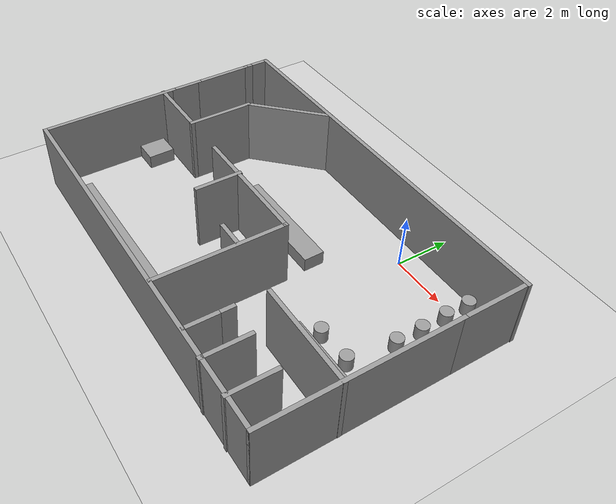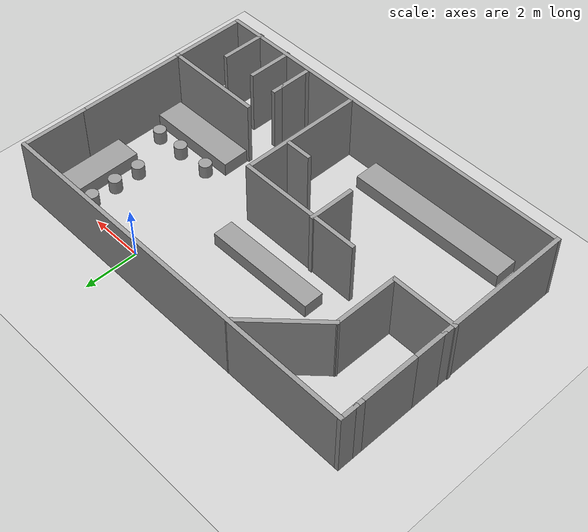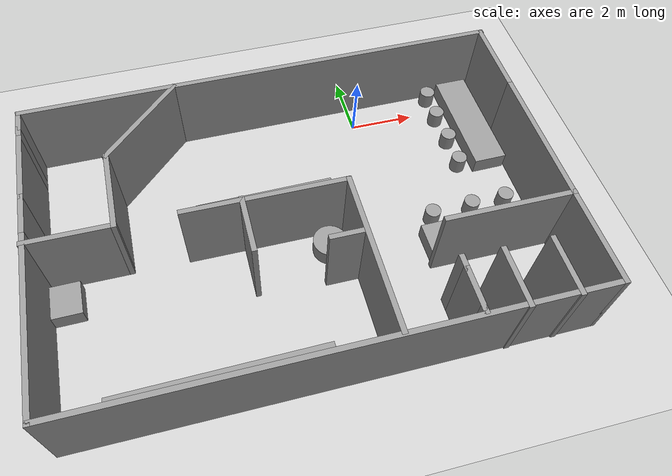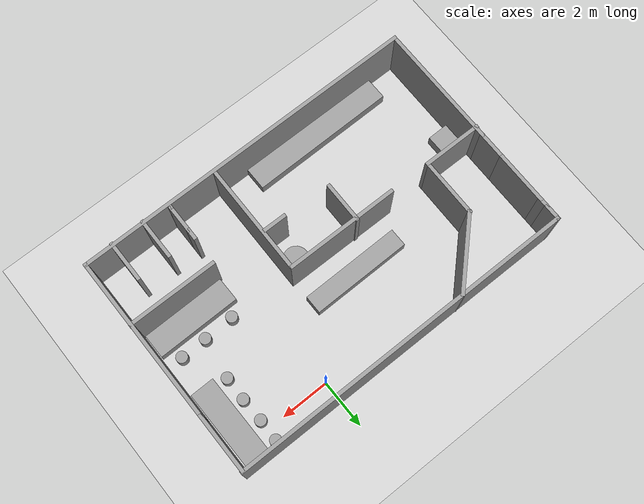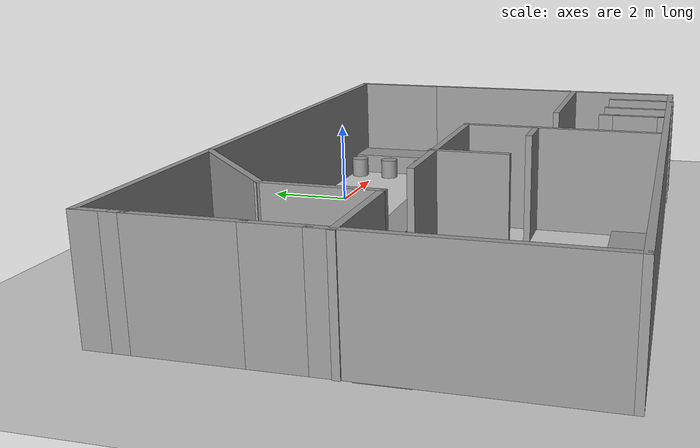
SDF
<sdf version="1.7">
 <world name="default">
  <scene><ambient>0.4 0.4 0.4 1</ambient><background>0.7 0.7 0.7 1</background><shadows>1</shadows></scene>
  <light name="sun" type="directional">
   <pose>0 0 10 0 -0 0</pose>
   <diffuse>0.8 0.8 0.8 1</diffuse>
   <specular>0.2 0.2 0.2 1</specular>
   <attenuation>
    <range>1000</range>
    <constant>0.9</constant>
    <linear>0.01</linear>
    <quadratic>0.001</quadratic>
   </attenuation>
   <direction>-0.5 0.1 -0.9</direction>
   <spot><inner_angle>0</inner_angle><outer_angle>0</outer_angle><falloff>0</falloff></spot>
  </light>
  <model name="ground_plane">
   <static>1</static>
   <link name="link">
    <collision name="collision">
     <geometry><plane><normal>0 0 1</normal><size>100 100</size></plane></geometry>
     <surface><friction><ode><mu>100</mu><mu2>50</mu2></ode></friction></surface>
    </collision>
    <visual name="visual">
     <cast_shadows>0</cast_shadows>
     <geometry><plane><normal>0 0 1</normal><size>100 100</size></plane></geometry>
     <material>
      <script><uri>file://media/materials/scripts/gazebo.material</uri><name>Gazebo/Grey</name></script>
     </material>
    </visual>
   </link>
  </model>
  <physics type="ode">
   <real_time_update_rate>0</real_time_update_rate>
   <max_step_size>0.001</max_step_size>
   <real_time_factor>1</real_time_factor>
   <ode>
    <solver>
     <type>quick</type>
     <iters>150</iters>
     <precon_iters>0</precon_iters>
     <sor>1.4</sor>
     <use_dynamic_moi_rescaling>1</use_dynamic_moi_rescaling>
    </solver>
    <constraints>
     <cfm>1e-05</cfm>
     <erp>0.2</erp>
     <contact_max_correcting_vel>2000</contact_max_correcting_vel>
     <contact_surface_layer>0.01</contact_surface_layer>
    </constraints>
   </ode>
  </physics>
  <gravity>0 0 -9.8</gravity>
  <magnetic_field>6e-06 2.3e-05 -4.2e-05</magnetic_field>
  <atmosphere type="adiabatic"/>
  <spherical_coordinates>
   <surface_model>EARTH_WGS84</surface_model>
   <latitude_deg>0</latitude_deg>
   <longitude_deg>0</longitude_deg>
   <elevation>0</elevation>
   <heading_deg>0</heading_deg>
  </spherical_coordinates>
  <model name="half_square">
   <pose>-2.87363 -3.76482 0 0 -0 0</pose>
   <link name="Wall_0">
    <collision name="Wall_0_Collision">
     <geometry><box><size>14.5 0.15 2.5</size></box></geometry>
     <pose>0 0 1.25 0 -0 0</pose>
    </collision>
    <visual name="Wall_0_Visual">
     <pose>0 0 1.25 0 -0 0</pose>
     <geometry><box><size>14.5 0.15 2.5</size></box></geometry>
     <material>
      <script><uri>file://media/materials/scripts/gazebo.material</uri><name>Gazebo/Grey</name></script>
      <ambient>1 1 1 1</ambient>
     </material>
     <meta><layer>0</layer></meta>
    </visual>
    <pose>-0.010056 -4.61503 0 0 -0 0</pose>
   </link>
   <link name="Wall_11">
    <collision name="Wall_11_Collision">
     <geometry><box><size>2.5 0.15 2.5</size></box></geometry>
     <pose>0 0 1.25 0 -0 0</pose>
    </collision>
    <visual name="Wall_11_Visual">
     <pose>0 0 1.25 0 -0 0</pose>
     <geometry><box><size>2.5 0.15 2.5</size></box></geometry>
     <material>
      <script><uri>file://media/materials/scripts/gazebo.material</uri><name>Gazebo/Grey</name></script>
      <ambient>1 1 1 1</ambient>
     </material>
     <meta><layer>0</layer></meta>
    </visual>
    <pose>7.16494 3.40997 0 0 -0 1.5708</pose>
   </link>
   <link name="Wall_13">
    <collision name="Wall_13_Collision">
     <geometry><box><size>0.730235 0.15 2.5</size></box></geometry>
     <pose>0 0 1.25 0 -0 0</pose>
    </collision>
    <visual name="Wall_13_Visual">
     <pose>0 0 1.25 0 -0 0</pose>
     <geometry><box><size>0.730235 0.15 2.5</size></box></geometry>
     <material>
      <script><uri>file://media/materials/scripts/gazebo.material</uri><name>Gazebo/Grey</name></script>
      <ambient>1 1 1 1</ambient>
     </material>
     <meta><layer>0</layer></meta>
    </visual>
    <pose>-7.18506 4.32491 0 0 -0 1.5708</pose>
   </link>
   <link name="Wall_14">
    <collision name="Wall_14_Collision">
     <geometry><box><size>14.5 0.15 2.5</size></box></geometry>
     <pose>0 0 1.25 0 -0 0</pose>
    </collision>
    <visual name="Wall_14_Visual">
     <pose>0 0 1.25 0 -0 0</pose>
     <geometry><box><size>14.5 0.15 2.5</size></box></geometry>
     <material>
      <script><uri>file://media/materials/scripts/gazebo.material</uri><name>Gazebo/Grey</name></script>
      <ambient>1 1 1 1</ambient>
     </material>
     <meta><layer>0</layer></meta>
    </visual>
    <pose>0.010057 4.61486 0 0 -0 0</pose>
   </link>
   <link name="Wall_2">
    <collision name="Wall_2_Collision">
     <geometry><box><size>5.25 0.15 2.5</size></box></geometry>
     <pose>0 0 1.25 0 -0 0</pose>
    </collision>
    <visual name="Wall_2_Visual">
     <pose>0 0 1.25 0 -0 0</pose>
     <geometry><box><size>5.25 0.15 2.5</size></box></geometry>
     <material>
      <script><uri>file://media/materials/scripts/gazebo.material</uri><name>Gazebo/Grey</name></script>
      <ambient>1 1 1 1</ambient>
     </material>
     <meta><layer>0</layer></meta>
    </visual>
    <pose>-7.18506 -2.06503 0 0 -0 1.5708</pose>
   </link>
   <link name="Wall_4">
    <collision name="Wall_4_Collision">
     <geometry><box><size>7 0.15 2.5</size></box></geometry>
     <pose>0 0 1.25 0 -0 0</pose>
    </collision>
    <visual name="Wall_4_Visual">
     <pose>0 0 1.25 0 -0 0</pose>
     <geometry><box><size>7 0.15 2.5</size></box></geometry>
     <material>
      <script><uri>file://media/materials/scripts/gazebo.material</uri><name>Gazebo/Grey</name></script>
      <ambient>1 1 1 1</ambient>
     </material>
     <meta><layer>0</layer></meta>
    </visual>
    <pose>7.16494 -1.19003 0 0 -0 1.5708</pose>
   </link>
   <link name="Wall_6">
    <collision name="Wall_6_Collision">
     <geometry><box><size>1.25 0.15 2.5</size></box></geometry>
     <pose>0 0 1.25 0 -0 0</pose>
    </collision>
    <visual name="Wall_6_Visual">
     <pose>0 0 1.25 0 -0 0</pose>
     <geometry><box><size>1.25 0.15 2.5</size></box></geometry>
     <material>
      <script><uri>file://media/materials/scripts/gazebo.material</uri><name>Gazebo/Grey</name></script>
      <ambient>1 1 1 1</ambient>
     </material>
     <meta><layer>0</layer></meta>
    </visual>
    <pose>-7.18506 1.03497 0 0 -0 1.5708</pose>
   </link>
   <link name="Wall_8">
    <collision name="Wall_8_Collision">
     <geometry><box><size>2.25 0.15 2.5</size></box></geometry>
     <pose>0 0 1.25 0 -0 0</pose>
    </collision>
    <visual name="Wall_8_Visual">
     <pose>0 0 1.25 0 -0 0</pose>
     <geometry><box><size>2.25 0.15 2.5</size></box></geometry>
     <material>
      <script><uri>file://media/materials/scripts/gazebo.material</uri><name>Gazebo/Grey</name></script>
      <ambient>1 1 1 1</ambient>
     </material>
     <meta><layer>0</layer></meta>
    </visual>
    <pose>-7.18506 2.63497 0 0 -0 1.5708</pose>
   </link>
   <link name="Wall_9">
    <collision name="Wall_9_Collision">
     <geometry><box><size>0.5 0.15 2.5</size></box></geometry>
     <pose>0 0 1.25 0 -0 0</pose>
    </collision>
    <visual name="Wall_9_Visual">
     <pose>0 0 1.25 0 -0 0</pose>
     <geometry><box><size>0.5 0.15 2.5</size></box></geometry>
     <material>
      <script><uri>file://media/materials/scripts/gazebo.material</uri><name>Gazebo/Grey</name></script>
      <ambient>1 1 1 1</ambient>
     </material>
     <meta><layer>0</layer></meta>
    </visual>
    <pose>-7.18506 3.85997 0 0 -0 1.5708</pose>
   </link>
   <static>1</static>
  </model>
  <model name="cafe_walls">
   <pose>-2.89162 -3.76464 0 0 -0 3.1369</pose>
   <link name="Wall_48">
    <collision name="Wall_48_Collision">
     <geometry><box><size>3.75 0.15 2.5</size></box></geometry>
     <pose>0 0 1.25 0 -0 0</pose>
    </collision>
    <visual name="Wall_48_Visual">
     <pose>0 0 1.25 0 -0 0</pose>
     <geometry><box><size>3.75 0.15 2.5</size></box></geometry>
     <material>
      <script><uri>file://media/materials/scripts/gazebo.material</uri><name>Gazebo/Grey</name></script>
      <ambient>1 1 1 1</ambient>
     </material>
     <meta><layer>0</layer></meta>
    </visual>
    <pose>-5.40006 1.81866 0 0 -0 3.14159</pose>
   </link>
   <link name="Wall_53">
    <collision name="Wall_53_Collision">
     <geometry><box><size>0.5 0.15 2.5</size></box></geometry>
     <pose>0 0 1.25 0 -0 0</pose>
    </collision>
    <visual name="Wall_53_Visual">
     <pose>0 0 1.25 0 -0 0</pose>
     <geometry><box><size>0.5 0.15 2.5</size></box></geometry>
     <material>
      <script><uri>file://media/materials/scripts/gazebo.material</uri><name>Gazebo/Grey</name></script>
      <ambient>1 1 1 1</ambient>
     </material>
     <meta><layer>0</layer></meta>
    </visual>
    <pose>-3.54856 3.16 0 0 -0 1.5708</pose>
   </link>
   <link name="Wall_54">
    <collision name="Wall_54_Collision">
     <geometry><box><size>1.25 0.15 2.5</size></box></geometry>
     <pose>0 0 1.25 0 -0 0</pose>
    </collision>
    <visual name="Wall_54_Visual">
     <pose>0 0 1.25 0 -0 0</pose>
     <geometry><box><size>1.25 0.15 2.5</size></box></geometry>
     <material>
      <script><uri>file://media/materials/scripts/gazebo.material</uri><name>Gazebo/Grey</name></script>
      <ambient>1 1 1 1</ambient>
     </material>
     <meta><layer>0</layer></meta>
    </visual>
    <pose>-3.54856 3.885 0 0 -0 1.5708</pose>
   </link>
   <link name="Wall_55">
    <collision name="Wall_55_Collision">
     <geometry><box><size>0.25 0.15 2.5</size></box></geometry>
     <pose>0 0 1.25 0 -0 0</pose>
    </collision>
    <visual name="Wall_55_Visual">
     <pose>0 0 1.25 0 -0 0</pose>
     <geometry><box><size>0.25 0.15 2.5</size></box></geometry>
     <material>
      <script><uri>file://media/materials/scripts/gazebo.material</uri><name>Gazebo/Grey</name></script>
      <ambient>1 1 1 1</ambient>
     </material>
     <meta><layer>0</layer></meta>
    </visual>
    <pose>-3.54856 4.485 0 0 -0 1.5708</pose>
   </link>
   <link name="Wall_57">
    <collision name="Wall_57_Collision">
     <geometry><box><size>1.75 0.15 2.5</size></box></geometry>
     <pose>0 0 1.25 0 -0 0</pose>
    </collision>
    <visual name="Wall_57_Visual">
     <pose>0 0 1.25 0 -0 0</pose>
     <geometry><box><size>1.75 0.15 2.5</size></box></geometry>
     <material>
      <script><uri>file://media/materials/scripts/gazebo.material</uri><name>Gazebo/Grey</name></script>
      <ambient>1 1 1 1</ambient>
     </material>
     <meta><layer>0</layer></meta>
    </visual>
    <pose>-4.66359 3.82352 0 0 -0 -1.5708</pose>
   </link>
   <link name="Wall_59">
    <collision name="Wall_59_Collision">
     <geometry><box><size>1.75 0.15 2.5</size></box></geometry>
     <pose>0 0 1.25 0 -0 0</pose>
    </collision>
    <visual name="Wall_59_Visual">
     <pose>0 0 1.25 0 -0 0</pose>
     <geometry><box><size>1.75 0.15 2.5</size></box></geometry>
     <material>
      <script><uri>file://media/materials/scripts/gazebo.material</uri><name>Gazebo/Grey</name></script>
      <ambient>1 1 1 1</ambient>
     </material>
     <meta><layer>0</layer></meta>
    </visual>
    <pose>-6.01717 3.82352 0 0 -0 -1.5708</pose>
   </link>
   <link name="Wall_61">
    <collision name="Wall_61_Collision">
     <geometry><box><size>4.75 0.15 2.5</size></box></geometry>
     <pose>0 0 1.25 0 -0 0</pose>
    </collision>
    <visual name="Wall_61_Visual">
     <pose>0 0 1.25 0 -0 0</pose>
     <geometry><box><size>4.75 0.15 2.5</size></box></geometry>
     <material>
      <script><uri>file://media/materials/scripts/gazebo.material</uri><name>Gazebo/Grey</name></script>
      <ambient>1 1 1 1</ambient>
     </material>
     <meta><layer>0</layer></meta>
    </visual>
    <pose>-1.48211 2.258 0 0 -0 -1.5708</pose>
   </link>
   <link name="Wall_62">
    <collision name="Wall_62_Collision">
     <geometry><box><size>4.75 0.15 2.5</size></box></geometry>
     <pose>0 0 1.25 0 -0 0</pose>
    </collision>
    <visual name="Wall_62_Visual">
     <pose>0 0 1.25 0 -0 0</pose>
     <geometry><box><size>4.75 0.15 2.5</size></box></geometry>
     <material>
      <script><uri>file://media/materials/scripts/gazebo.material</uri><name>Gazebo/Grey</name></script>
      <ambient>1 1 1 1</ambient>
     </material>
     <meta><layer>0</layer></meta>
    </visual>
    <pose>0.817886 -0.042005 0 0 -0 0</pose>
   </link>
   <link name="Wall_64">
    <collision name="Wall_64_Collision">
     <geometry><box><size>2.5 0.15 2.5</size></box></geometry>
     <pose>0 0 1.25 0 -0 0</pose>
    </collision>
    <visual name="Wall_64_Visual">
     <pose>0 0 1.25 0 -0 0</pose>
     <geometry><box><size>2.5 0.15 2.5</size></box></geometry>
     <material>
      <script><uri>file://media/materials/scripts/gazebo.material</uri><name>Gazebo/Grey</name></script>
      <ambient>1 1 1 1</ambient>
     </material>
     <meta><layer>0</layer></meta>
    </visual>
    <pose>6.02506 -0.050424 0 0 -0 0</pose>
   </link>
   <link name="Wall_69">
    <collision name="Wall_69_Collision">
     <geometry><box><size>1 0.15 2.5</size></box></geometry>
     <pose>0 0 1.25 0 -0 0</pose>
    </collision>
    <visual name="Wall_69_Visual">
     <pose>0 0 1.25 0 -0 0</pose>
     <geometry><box><size>1 0.15 2.5</size></box></geometry>
     <material>
      <script><uri>file://media/materials/scripts/gazebo.material</uri><name>Gazebo/Grey</name></script>
      <ambient>1 1 1 1</ambient>
     </material>
     <meta><layer>0</layer></meta>
    </visual>
    <pose>-0.951578 1.63816 0 0 -0 0</pose>
   </link>
   <link name="Wall_71">
    <collision name="Wall_71_Collision">
     <geometry><box><size>1.75 0.15 2.5</size></box></geometry>
     <pose>0 0 1.25 0 -0 0</pose>
    </collision>
    <visual name="Wall_71_Visual">
     <pose>0 0 1.25 0 -0 0</pose>
     <geometry><box><size>1.75 0.15 2.5</size></box></geometry>
     <material>
      <script><uri>file://media/materials/scripts/gazebo.material</uri><name>Gazebo/Grey</name></script>
      <ambient>1 1 1 1</ambient>
     </material>
     <meta><layer>0</layer></meta>
    </visual>
    <pose>1.4729 0.714398 0 0 -0 1.5708</pose>
   </link>
   <link name="Wall_73">
    <collision name="Wall_73_Collision">
     <geometry><box><size>2.5 0.15 2.5</size></box></geometry>
     <pose>0 0 1.25 0 -0 0</pose>
    </collision>
    <visual name="Wall_73_Visual">
     <pose>0 0 1.25 0 -0 0</pose>
     <geometry><box><size>2.5 0.15 2.5</size></box></geometry>
     <material>
      <script><uri>file://media/materials/scripts/gazebo.material</uri><name>Gazebo/Grey</name></script>
      <ambient>1 1 1 1</ambient>
     </material>
     <meta><layer>0</layer></meta>
    </visual>
    <pose>4.85006 -1.22542 0 0 -0 -1.5708</pose>
   </link>
   <link name="Wall_75">
    <collision name="Wall_75_Collision">
     <geometry><box><size>3.25 0.15 2.5</size></box></geometry>
     <pose>0 0 1.25 0 -0 0</pose>
    </collision>
    <visual name="Wall_75_Visual">
     <pose>0 0 1.25 0 -0 0</pose>
     <geometry><box><size>3.25 0.15 2.5</size></box></geometry>
     <material>
      <script><uri>file://media/materials/scripts/gazebo.material</uri><name>Gazebo/Grey</name></script>
      <ambient>1 1 1 1</ambient>
     </material>
     <meta><layer>0</layer></meta>
    </visual>
    <pose>3.75405 -3.49644 0 0 -0 -2.35619</pose>
   </link>
   <static>1</static>
  </model>
  <model name="cafe_interior">
   <link name="link_1">
    <inertial>
     <mass>3.14399</mass>
     <inertia><ixx>0.410461</ixx><ixy>0</ixy><ixz>0</ixz><iyy>4.8323</iyy><iyz>0</iyz><izz>4.71876</izz></inertia>
    </inertial>
    <pose>3.75417 -0.614676 0 0 -0 0</pose>
    <visual name="visual">
     <geometry><box><size>4.1766 0.752762 1</size></box></geometry>
     <material>
      <lighting>1</lighting>
      <script><uri>file://media/materials/scripts/gazebo.material</uri><name>Gazebo/Grey</name></script>
      <shader type="pixel"/>
     </material>
    </visual>
    <collision name="collision">
     <geometry><box><size>4.1766 0.752762 1</size></box></geometry>
     <surface>
      <friction>
       <ode><mu>1</mu><mu2>1</mu2><fdir1>0 0 0</fdir1><slip1>0</slip1><slip2>0</slip2></ode>
       <torsional>
        <coefficient>1</coefficient>
        <patch_radius>0</patch_radius>
        <surface_radius>0</surface_radius>
        <use_patch_radius>1</use_patch_radius>
        <ode><slip>0</slip></ode>
       </torsional>
      </friction>
      <bounce><restitution_coefficient>0</restitution_coefficient><threshold>1e+06</threshold></bounce>
      <contact>
       <collide_without_contact>0</collide_without_contact>
       <collide_without_contact_bitmask>1</collide_without_contact_bitmask>
       <collide_bitmask>1</collide_bitmask>
       <ode>
        <soft_cfm>0</soft_cfm>
        <soft_erp>0.2</soft_erp>
        <kp>1e+13</kp>
        <kd>1</kd>
        <max_vel>0.01</max_vel>
        <min_depth>0</min_depth>
       </ode>
       <bullet>
        <split_impulse>1</split_impulse>
        <split_impulse_penetration_threshold>-0.01</split_impulse_penetration_threshold>
        <soft_cfm>0</soft_cfm>
        <soft_erp>0.2</soft_erp>
        <kp>1e+13</kp>
        <kd>1</kd>
       </bullet>
      </contact>
     </surface>
    </collision>
   </link>
   <link name="link_2">
    <inertial>
     <mass>3.47071</mass>
     <inertia><ixx>0.578451</ixx><ixy>0</ixy><ixz>0</ixz><iyy>3.77317</iyy><iyz>0</iyz><izz>3.77317</izz></inertia>
    </inertial>
    <pose>-2.15268 1.85917 0 0 -0 0</pose>
    <visual name="visual">
     <geometry><box><size>3.4707 1 1</size></box></geometry>
     <material>
      <lighting>1</lighting>
      <script><uri>file://media/materials/scripts/gazebo.material</uri><name>Gazebo/Grey</name></script>
      <shader type="pixel"/>
     </material>
    </visual>
    <collision name="collision">
     <geometry><box><size>3.4707 1 1</size></box></geometry>
     <surface>
      <friction>
       <ode><mu>1</mu><mu2>1</mu2><fdir1>0 0 0</fdir1><slip1>0</slip1><slip2>0</slip2></ode>
       <torsional>
        <coefficient>1</coefficient>
        <patch_radius>0</patch_radius>
        <surface_radius>0</surface_radius>
        <use_patch_radius>1</use_patch_radius>
        <ode><slip>0</slip></ode>
       </torsional>
      </friction>
      <bounce><restitution_coefficient>0</restitution_coefficient><threshold>1e+06</threshold></bounce>
      <contact>
       <collide_without_contact>0</collide_without_contact>
       <collide_without_contact_bitmask>1</collide_without_contact_bitmask>
       <collide_bitmask>1</collide_bitmask>
       <ode>
        <soft_cfm>0</soft_cfm>
        <soft_erp>0.2</soft_erp>
        <kp>1e+13</kp>
        <kd>1</kd>
        <max_vel>0.01</max_vel>
        <min_depth>0</min_depth>
       </ode>
       <bullet>
        <split_impulse>1</split_impulse>
        <split_impulse_penetration_threshold>-0.01</split_impulse_penetration_threshold>
        <soft_cfm>0</soft_cfm>
        <soft_erp>0.2</soft_erp>
        <kp>1e+13</kp>
        <kd>1</kd>
       </bullet>
      </contact>
     </surface>
    </collision>
   </link>
   <link name="link_3">
    <inertial>
     <mass>3.47963</mass>
     <inertia><ixx>3.80086</ixx><ixy>0</ixy><ixz>0</ixz><iyy>0.579939</iyy><iyz>0</iyz><izz>3.80086</izz></inertia>
    </inertial>
    <pose>-3.41032 -2.18806 0 0 -0 0</pose>
    <visual name="visual">
     <geometry><box><size>1 3.47963 1</size></box></geometry>
     <material>
      <lighting>1</lighting>
      <script><uri>file://media/materials/scripts/gazebo.material</uri><name>Gazebo/Grey</name></script>
      <shader type="pixel"/>
     </material>
    </visual>
    <collision name="collision">
     <geometry><box><size>1 3.47963 1</size></box></geometry>
     <surface>
      <friction>
       <ode><mu>1</mu><mu2>1</mu2><fdir1>0 0 0</fdir1><slip1>0</slip1><slip2>0</slip2></ode>
       <torsional>
        <coefficient>1</coefficient>
        <patch_radius>0</patch_radius>
        <surface_radius>0</surface_radius>
        <use_patch_radius>1</use_patch_radius>
        <ode><slip>0</slip></ode>
       </torsional>
      </friction>
      <bounce><restitution_coefficient>0</restitution_coefficient><threshold>1e+06</threshold></bounce>
      <contact>
       <collide_without_contact>0</collide_without_contact>
       <collide_without_contact_bitmask>1</collide_without_contact_bitmask>
       <collide_bitmask>1</collide_bitmask>
       <ode>
        <soft_cfm>0</soft_cfm>
        <soft_erp>0.2</soft_erp>
        <kp>1e+13</kp>
        <kd>1</kd>
        <max_vel>0.01</max_vel>
        <min_depth>0</min_depth>
       </ode>
       <bullet>
        <split_impulse>1</split_impulse>
        <split_impulse_penetration_threshold>-0.01</split_impulse_penetration_threshold>
        <soft_cfm>0</soft_cfm>
        <soft_erp>0.2</soft_erp>
        <kp>1e+13</kp>
        <kd>1</kd>
       </bullet>
      </contact>
     </surface>
    </collision>
   </link>
   <link name="link_4">
    <inertial>
     <mass>0.217439</mass>
     <inertia>
      <ixx>0.0210749</ixx>
      <ixy>0</ixy>
      <ixz>0</ixz>
      <iyy>0.0210749</iyy>
      <iyz>0</iyz>
      <izz>0.00590998</izz>
     </inertia>
    </inertial>
    <pose>-3.31292 0.898844 0 0 -0 0</pose>
    <visual name="visual">
     <geometry><cylinder><radius>0.233152</radius><length>1</length></cylinder></geometry>
     <material>
      <lighting>1</lighting>
      <script><uri>file://media/materials/scripts/gazebo.material</uri><name>Gazebo/Grey</name></script>
      <shader type="pixel"/>
     </material>
    </visual>
    <collision name="collision">
     <geometry><cylinder><radius>0.233152</radius><length>1</length></cylinder></geometry>
     <surface>
      <friction>
       <ode><mu>1</mu><mu2>1</mu2><fdir1>0 0 0</fdir1><slip1>0</slip1><slip2>0</slip2></ode>
       <torsional>
        <coefficient>1</coefficient>
        <patch_radius>0</patch_radius>
        <surface_radius>0</surface_radius>
        <use_patch_radius>1</use_patch_radius>
        <ode><slip>0</slip></ode>
       </torsional>
      </friction>
      <bounce><restitution_coefficient>0</restitution_coefficient><threshold>1e+06</threshold></bounce>
      <contact>
       <collide_without_contact>0</collide_without_contact>
       <collide_without_contact_bitmask>1</collide_without_contact_bitmask>
       <collide_bitmask>1</collide_bitmask>
       <ode>
        <soft_cfm>0</soft_cfm>
        <soft_erp>0.2</soft_erp>
        <kp>1e+13</kp>
        <kd>1</kd>
        <max_vel>0.01</max_vel>
        <min_depth>0</min_depth>
       </ode>
       <bullet>
        <split_impulse>1</split_impulse>
        <split_impulse_penetration_threshold>-0.01</split_impulse_penetration_threshold>
        <soft_cfm>0</soft_cfm>
        <soft_erp>0.2</soft_erp>
        <kp>1e+13</kp>
        <kd>1</kd>
       </bullet>
      </contact>
     </surface>
    </collision>
   </link>
   <link name="link_4_clone">
    <inertial>
     <mass>0.217439</mass>
     <inertia>
      <ixx>0.0210749</ixx>
      <ixy>0</ixy>
      <ixz>0</ixz>
      <iyy>0.0210749</iyy>
      <iyz>0</iyz>
      <izz>0.00590998</izz>
     </inertia>
    </inertial>
    <pose>-2.2222 0.910667 0 0 -0 0</pose>
    <visual name="visual">
     <geometry><cylinder><radius>0.233152</radius><length>1</length></cylinder></geometry>
     <material>
      <lighting>1</lighting>
      <script><uri>file://media/materials/scripts/gazebo.material</uri><name>Gazebo/Grey</name></script>
      <shader type="pixel"/>
     </material>
    </visual>
    <collision name="collision">
     <geometry><cylinder><radius>0.233152</radius><length>1</length></cylinder></geometry>
     <surface>
      <friction>
       <ode><mu>1</mu><mu2>1</mu2><fdir1>0 0 0</fdir1><slip1>0</slip1><slip2>0</slip2></ode>
       <torsional>
        <coefficient>1</coefficient>
        <patch_radius>0</patch_radius>
        <surface_radius>0</surface_radius>
        <use_patch_radius>1</use_patch_radius>
        <ode><slip>0</slip></ode>
       </torsional>
      </friction>
      <bounce><restitution_coefficient>0</restitution_coefficient><threshold>1e+06</threshold></bounce>
      <contact>
       <collide_without_contact>0</collide_without_contact>
       <collide_without_contact_bitmask>1</collide_without_contact_bitmask>
       <collide_bitmask>1</collide_bitmask>
       <ode>
        <soft_cfm>0</soft_cfm>
        <soft_erp>0.2</soft_erp>
        <kp>1e+13</kp>
        <kd>1</kd>
        <max_vel>0.01</max_vel>
        <min_depth>0</min_depth>
       </ode>
       <bullet>
        <split_impulse>1</split_impulse>
        <split_impulse_penetration_threshold>-0.01</split_impulse_penetration_threshold>
        <soft_cfm>0</soft_cfm>
        <soft_erp>0.2</soft_erp>
        <kp>1e+13</kp>
        <kd>1</kd>
       </bullet>
      </contact>
     </surface>
    </collision>
   </link>
   <link name="link_4_clone_0">
    <inertial>
     <mass>0.217439</mass>
     <inertia>
      <ixx>0.0210749</ixx>
      <ixy>0</ixy>
      <ixz>0</ixz>
      <iyy>0.0210749</iyy>
      <iyz>0</iyz>
      <izz>0.00590998</izz>
     </inertia>
    </inertial>
    <pose>-0.962683 0.941439 0 0 -0 0</pose>
    <visual name="visual">
     <geometry><cylinder><radius>0.233152</radius><length>1</length></cylinder></geometry>
     <material>
      <lighting>1</lighting>
      <script><uri>file://media/materials/scripts/gazebo.material</uri><name>Gazebo/Grey</name></script>
      <shader type="pixel"/>
     </material>
    </visual>
    <collision name="collision">
     <geometry><cylinder><radius>0.233152</radius><length>1</length></cylinder></geometry>
     <surface>
      <friction>
       <ode><mu>1</mu><mu2>1</mu2><fdir1>0 0 0</fdir1><slip1>0</slip1><slip2>0</slip2></ode>
       <torsional>
        <coefficient>1</coefficient>
        <patch_radius>0</patch_radius>
        <surface_radius>0</surface_radius>
        <use_patch_radius>1</use_patch_radius>
        <ode><slip>0</slip></ode>
       </torsional>
      </friction>
      <bounce><restitution_coefficient>0</restitution_coefficient><threshold>1e+06</threshold></bounce>
      <contact>
       <collide_without_contact>0</collide_without_contact>
       <collide_without_contact_bitmask>1</collide_without_contact_bitmask>
       <collide_bitmask>1</collide_bitmask>
       <ode>
        <soft_cfm>0</soft_cfm>
        <soft_erp>0.2</soft_erp>
        <kp>1e+13</kp>
        <kd>1</kd>
        <max_vel>0.01</max_vel>
        <min_depth>0</min_depth>
       </ode>
       <bullet>
        <split_impulse>1</split_impulse>
        <split_impulse_penetration_threshold>-0.01</split_impulse_penetration_threshold>
        <soft_cfm>0</soft_cfm>
        <soft_erp>0.2</soft_erp>
        <kp>1e+13</kp>
        <kd>1</kd>
       </bullet>
      </contact>
     </surface>
    </collision>
   </link>
   <link name="link_4_clone_1">
    <inertial>
     <mass>0.217439</mass>
     <inertia>
      <ixx>0.0210749</ixx>
      <ixy>0</ixy>
      <ixz>0</ixz>
      <iyy>0.0210749</iyy>
      <iyz>0</iyz>
      <izz>0.00590998</izz>
     </inertia>
    </inertial>
    <pose>-2.49004 -0.764015 0 0 -0 0</pose>
    <visual name="visual">
     <geometry><cylinder><radius>0.233152</radius><length>1</length></cylinder></geometry>
     <material>
      <lighting>1</lighting>
      <script><uri>file://media/materials/scripts/gazebo.material</uri><name>Gazebo/Grey</name></script>
      <shader type="pixel"/>
     </material>
    </visual>
    <collision name="collision">
     <geometry><cylinder><radius>0.233152</radius><length>1</length></cylinder></geometry>
     <surface>
      <friction>
       <ode><mu>1</mu><mu2>1</mu2><fdir1>0 0 0</fdir1><slip1>0</slip1><slip2>0</slip2></ode>
       <torsional>
        <coefficient>1</coefficient>
        <patch_radius>0</patch_radius>
        <surface_radius>0</surface_radius>
        <use_patch_radius>1</use_patch_radius>
        <ode><slip>0</slip></ode>
       </torsional>
      </friction>
      <bounce><restitution_coefficient>0</restitution_coefficient><threshold>1e+06</threshold></bounce>
      <contact>
       <collide_without_contact>0</collide_without_contact>
       <collide_without_contact_bitmask>1</collide_without_contact_bitmask>
       <collide_bitmask>1</collide_bitmask>
       <ode>
        <soft_cfm>0</soft_cfm>
        <soft_erp>0.2</soft_erp>
        <kp>1e+13</kp>
        <kd>1</kd>
        <max_vel>0.01</max_vel>
        <min_depth>0</min_depth>
       </ode>
       <bullet>
        <split_impulse>1</split_impulse>
        <split_impulse_penetration_threshold>-0.01</split_impulse_penetration_threshold>
        <soft_cfm>0</soft_cfm>
        <soft_erp>0.2</soft_erp>
        <kp>1e+13</kp>
        <kd>1</kd>
       </bullet>
      </contact>
     </surface>
    </collision>
   </link>
   <link name="link_4_clone_2">
    <inertial>
     <mass>0.217439</mass>
     <inertia>
      <ixx>0.0210749</ixx>
      <ixy>0</ixy>
      <ixz>0</ixz>
      <iyy>0.0210749</iyy>
      <iyz>0</iyz>
      <izz>0.00590998</izz>
     </inertia>
    </inertial>
    <pose>-2.51205 -1.74329 0 0 -0 0</pose>
    <visual name="visual">
     <geometry><cylinder><radius>0.233152</radius><length>1</length></cylinder></geometry>
     <material>
      <lighting>1</lighting>
      <script><uri>file://media/materials/scripts/gazebo.material</uri><name>Gazebo/Grey</name></script>
      <shader type="pixel"/>
     </material>
    </visual>
    <collision name="collision">
     <geometry><cylinder><radius>0.233152</radius><length>1</length></cylinder></geometry>
     <surface>
      <friction>
       <ode><mu>1</mu><mu2>1</mu2><fdir1>0 0 0</fdir1><slip1>0</slip1><slip2>0</slip2></ode>
       <torsional>
        <coefficient>1</coefficient>
        <patch_radius>0</patch_radius>
        <surface_radius>0</surface_radius>
        <use_patch_radius>1</use_patch_radius>
        <ode><slip>0</slip></ode>
       </torsional>
      </friction>
      <bounce><restitution_coefficient>0</restitution_coefficient><threshold>1e+06</threshold></bounce>
      <contact>
       <collide_without_contact>0</collide_without_contact>
       <collide_without_contact_bitmask>1</collide_without_contact_bitmask>
       <collide_bitmask>1</collide_bitmask>
       <ode>
        <soft_cfm>0</soft_cfm>
        <soft_erp>0.2</soft_erp>
        <kp>1e+13</kp>
        <kd>1</kd>
        <max_vel>0.01</max_vel>
        <min_depth>0</min_depth>
       </ode>
       <bullet>
        <split_impulse>1</split_impulse>
        <split_impulse_penetration_threshold>-0.01</split_impulse_penetration_threshold>
        <soft_cfm>0</soft_cfm>
        <soft_erp>0.2</soft_erp>
        <kp>1e+13</kp>
        <kd>1</kd>
       </bullet>
      </contact>
     </surface>
    </collision>
   </link>
   <link name="link_4_clone_3">
    <inertial>
     <mass>0.217439</mass>
     <inertia>
      <ixx>0.0210749</ixx>
      <ixy>0</ixy>
      <ixz>0</ixz>
      <iyy>0.0210749</iyy>
      <iyz>0</iyz>
      <izz>0.00590998</izz>
     </inertia>
    </inertial>
    <pose>-2.48474 -2.73644 0 0 -0 0</pose>
    <visual name="visual">
     <geometry><cylinder><radius>0.233152</radius><length>1</length></cylinder></geometry>
     <material>
      <lighting>1</lighting>
      <script><uri>file://media/materials/scripts/gazebo.material</uri><name>Gazebo/Grey</name></script>
      <shader type="pixel"/>
     </material>
    </visual>
    <collision name="collision">
     <geometry><cylinder><radius>0.233152</radius><length>1</length></cylinder></geometry>
     <surface>
      <friction>
       <ode><mu>1</mu><mu2>1</mu2><fdir1>0 0 0</fdir1><slip1>0</slip1><slip2>0</slip2></ode>
       <torsional>
        <coefficient>1</coefficient>
        <patch_radius>0</patch_radius>
        <surface_radius>0</surface_radius>
        <use_patch_radius>1</use_patch_radius>
        <ode><slip>0</slip></ode>
       </torsional>
      </friction>
      <bounce><restitution_coefficient>0</restitution_coefficient><threshold>1e+06</threshold></bounce>
      <contact>
       <collide_without_contact>0</collide_without_contact>
       <collide_without_contact_bitmask>1</collide_without_contact_bitmask>
       <collide_bitmask>1</collide_bitmask>
       <ode>
        <soft_cfm>0</soft_cfm>
        <soft_erp>0.2</soft_erp>
        <kp>1e+13</kp>
        <kd>1</kd>
        <max_vel>0.01</max_vel>
        <min_depth>0</min_depth>
       </ode>
       <bullet>
        <split_impulse>1</split_impulse>
        <split_impulse_penetration_threshold>-0.01</split_impulse_penetration_threshold>
        <soft_cfm>0</soft_cfm>
        <soft_erp>0.2</soft_erp>
        <kp>1e+13</kp>
        <kd>1</kd>
       </bullet>
      </contact>
     </surface>
    </collision>
   </link>
   <link name="link_4_clone_4">
    <inertial>
     <mass>0.217439</mass>
     <inertia>
      <ixx>0.0210749</ixx>
      <ixy>0</ixy>
      <ixz>0</ixz>
      <iyy>0.0210749</iyy>
      <iyz>0</iyz>
      <izz>0.00590998</izz>
     </inertia>
    </inertial>
    <pose>-2.50603 -3.64464 0 0 -0 0</pose>
    <visual name="visual">
     <geometry><cylinder><radius>0.233152</radius><length>1</length></cylinder></geometry>
     <material>
      <lighting>1</lighting>
      <script><uri>file://media/materials/scripts/gazebo.material</uri><name>Gazebo/Grey</name></script>
      <shader type="pixel"/>
     </material>
    </visual>
    <collision name="collision">
     <geometry><cylinder><radius>0.233152</radius><length>1</length></cylinder></geometry>
     <surface>
      <friction>
       <ode><mu>1</mu><mu2>1</mu2><fdir1>0 0 0</fdir1><slip1>0</slip1><slip2>0</slip2></ode>
       <torsional>
        <coefficient>1</coefficient>
        <patch_radius>0</patch_radius>
        <surface_radius>0</surface_radius>
        <use_patch_radius>1</use_patch_radius>
        <ode><slip>0</slip></ode>
       </torsional>
      </friction>
      <bounce><restitution_coefficient>0</restitution_coefficient><threshold>1e+06</threshold></bounce>
      <contact>
       <collide_without_contact>0</collide_without_contact>
       <collide_without_contact_bitmask>1</collide_without_contact_bitmask>
       <collide_bitmask>1</collide_bitmask>
       <ode>
        <soft_cfm>0</soft_cfm>
        <soft_erp>0.2</soft_erp>
        <kp>1e+13</kp>
        <kd>1</kd>
        <max_vel>0.01</max_vel>
        <min_depth>0</min_depth>
       </ode>
       <bullet>
        <split_impulse>1</split_impulse>
        <split_impulse_penetration_threshold>-0.01</split_impulse_penetration_threshold>
        <soft_cfm>0</soft_cfm>
        <soft_erp>0.2</soft_erp>
        <kp>1e+13</kp>
        <kd>1</kd>
       </bullet>
      </contact>
     </surface>
    </collision>
   </link>
   <link name="link_5">
    <inertial>
     <mass>6.07946</mass>
     <inertia><ixx>1.01324</ixx><ixy>0</ixy><ixz>0</ixz><iyy>19.2312</iyy><iyz>0</iyz><izz>19.2312</izz></inertia>
    </inertial>
    <pose>6.10409 4.69927 0 0 -0 0</pose>
    <visual name="visual">
     <geometry><box><size>6.07945 1 1</size></box></geometry>
     <material>
      <lighting>1</lighting>
      <script><uri>file://media/materials/scripts/gazebo.material</uri><name>Gazebo/Grey</name></script>
      <shader type="pixel"/>
     </material>
    </visual>
    <collision name="collision">
     <geometry><box><size>6.07945 1 1</size></box></geometry>
     <surface>
      <friction>
       <ode><mu>1</mu><mu2>1</mu2><fdir1>0 0 0</fdir1><slip1>0</slip1><slip2>0</slip2></ode>
       <torsional>
        <coefficient>1</coefficient>
        <patch_radius>0</patch_radius>
        <surface_radius>0</surface_radius>
        <use_patch_radius>1</use_patch_radius>
        <ode><slip>0</slip></ode>
       </torsional>
      </friction>
      <bounce><restitution_coefficient>0</restitution_coefficient><threshold>1e+06</threshold></bounce>
      <contact>
       <collide_without_contact>0</collide_without_contact>
       <collide_without_contact_bitmask>1</collide_without_contact_bitmask>
       <collide_bitmask>1</collide_bitmask>
       <ode>
        <soft_cfm>0</soft_cfm>
        <soft_erp>0.2</soft_erp>
        <kp>1e+13</kp>
        <kd>1</kd>
        <max_vel>0.01</max_vel>
        <min_depth>0</min_depth>
       </ode>
       <bullet>
        <split_impulse>1</split_impulse>
        <split_impulse_penetration_threshold>-0.01</split_impulse_penetration_threshold>
        <soft_cfm>0</soft_cfm>
        <soft_erp>0.2</soft_erp>
        <kp>1e+13</kp>
        <kd>1</kd>
       </bullet>
      </contact>
     </surface>
    </collision>
   </link>
   <link name="link_6">
    <inertial>
     <mass>1</mass>
     <inertia>
      <ixx>0.166667</ixx>
      <ixy>0</ixy>
      <ixz>0</ixz>
      <iyy>0.166667</iyy>
      <iyz>0</iyz>
      <izz>0.166667</izz>
     </inertia>
    </inertial>
    <pose>9.89677 1.20388 0 0 -0 0</pose>
    <visual name="visual">
     <geometry><box><size>1 1 1</size></box></geometry>
     <material>
      <lighting>1</lighting>
      <script><uri>file://media/materials/scripts/gazebo.material</uri><name>Gazebo/Grey</name></script>
      <shader type="pixel"/>
     </material>
    </visual>
    <collision name="collision">
     <geometry><box><size>1 1 1</size></box></geometry>
     <surface>
      <friction>
       <ode><mu>1</mu><mu2>1</mu2><fdir1>0 0 0</fdir1><slip1>0</slip1><slip2>0</slip2></ode>
       <torsional>
        <coefficient>1</coefficient>
        <patch_radius>0</patch_radius>
        <surface_radius>0</surface_radius>
        <use_patch_radius>1</use_patch_radius>
        <ode><slip>0</slip></ode>
       </torsional>
      </friction>
      <bounce><restitution_coefficient>0</restitution_coefficient><threshold>1e+06</threshold></bounce>
      <contact>
       <collide_without_contact>0</collide_without_contact>
       <collide_without_contact_bitmask>1</collide_without_contact_bitmask>
       <collide_bitmask>1</collide_bitmask>
       <ode>
        <soft_cfm>0</soft_cfm>
        <soft_erp>0.2</soft_erp>
        <kp>1e+13</kp>
        <kd>1</kd>
        <max_vel>0.01</max_vel>
        <min_depth>0</min_depth>
       </ode>
       <bullet>
        <split_impulse>1</split_impulse>
        <split_impulse_penetration_threshold>-0.01</split_impulse_penetration_threshold>
        <soft_cfm>0</soft_cfm>
        <soft_erp>0.2</soft_erp>
        <kp>1e+13</kp>
        <kd>1</kd>
       </bullet>
      </contact>
     </surface>
    </collision>
   </link>
   <link name="link_7">
    <inertial>
     <mass>1</mass>
     <inertia><ixx>0.145833</ixx><ixy>0</ixy><ixz>0</ixz><iyy>0.145833</iyy><iyz>0</iyz><izz>0.125</izz></inertia>
    </inertial>
    <pose>2.29865 1.17784 0 0 -0 0</pose>
    <visual name="visual">
     <geometry><cylinder><radius>0.5</radius><length>1</length></cylinder></geometry>
     <material>
      <lighting>1</lighting>
      <script><uri>file://media/materials/scripts/gazebo.material</uri><name>Gazebo/Grey</name></script>
      <shader type="pixel"/>
     </material>
    </visual>
    <collision name="collision">
     <geometry><cylinder><radius>0.5</radius><length>1</length></cylinder></geometry>
     <surface>
      <friction>
       <ode><mu>1</mu><mu2>1</mu2><fdir1>0 0 0</fdir1><slip1>0</slip1><slip2>0</slip2></ode>
       <torsional>
        <coefficient>1</coefficient>
        <patch_radius>0</patch_radius>
        <surface_radius>0</surface_radius>
        <use_patch_radius>1</use_patch_radius>
        <ode><slip>0</slip></ode>
       </torsional>
      </friction>
      <bounce><restitution_coefficient>0</restitution_coefficient><threshold>1e+06</threshold></bounce>
      <contact>
       <collide_without_contact>0</collide_without_contact>
       <collide_without_contact_bitmask>1</collide_without_contact_bitmask>
       <collide_bitmask>1</collide_bitmask>
       <ode>
        <soft_cfm>0</soft_cfm>
        <soft_erp>0.2</soft_erp>
        <kp>1e+13</kp>
        <kd>1</kd>
        <max_vel>0.01</max_vel>
        <min_depth>0</min_depth>
       </ode>
       <bullet>
        <split_impulse>1</split_impulse>
        <split_impulse_penetration_threshold>-0.01</split_impulse_penetration_threshold>
        <soft_cfm>0</soft_cfm>
        <soft_erp>0.2</soft_erp>
        <kp>1e+13</kp>
        <kd>1</kd>
       </bullet>
      </contact>
     </surface>
    </collision>
   </link>
   <static>1</static>
   <pose>0.264377 -3.14141 0 0 0 -3.1334</pose>
  </model>
  <plugin name="gazebo_occupancy_map" filename="libgazebo_2Dmap_plugin.so">
   <map_resolution>0.02</map_resolution>
   <map_height>0.7</map_height>
   <map_size_x>20</map_size_x>
   <map_size_y>20</map_size_y>
   <init_robot_x>0</init_robot_x>
   <init_robot_y>0</init_robot_y>
  </plugin>
 </world>
</sdf>
